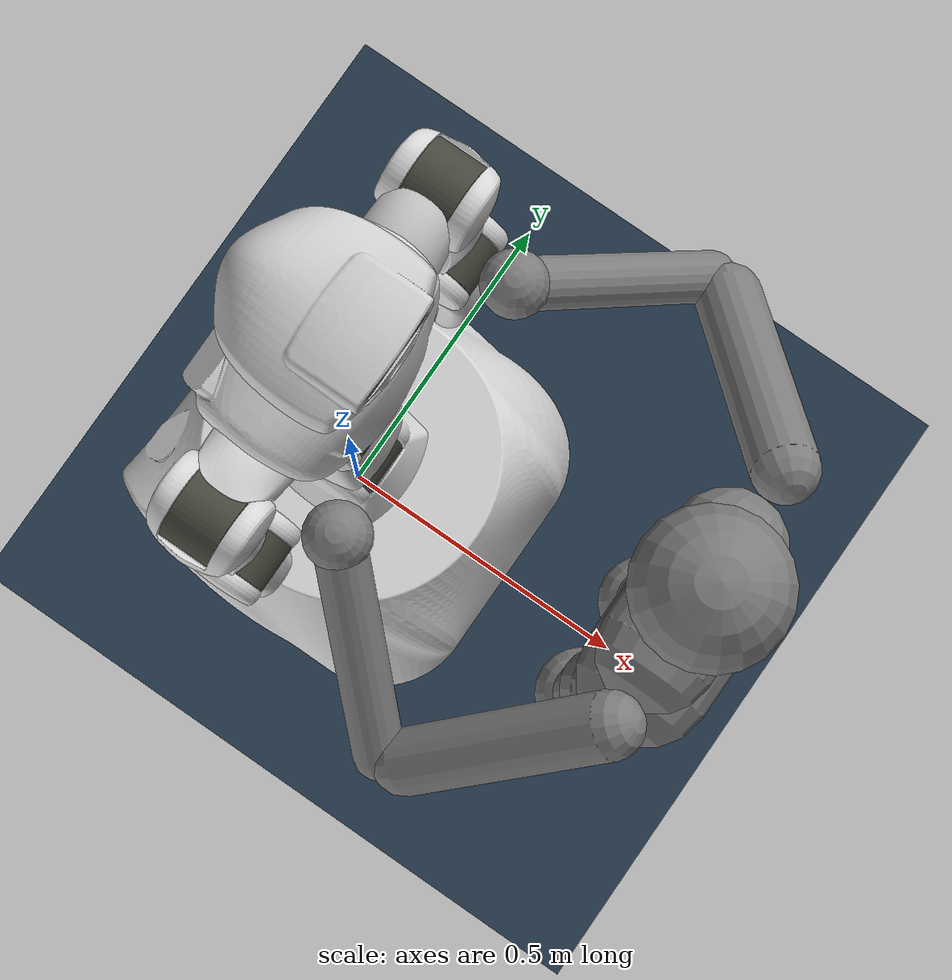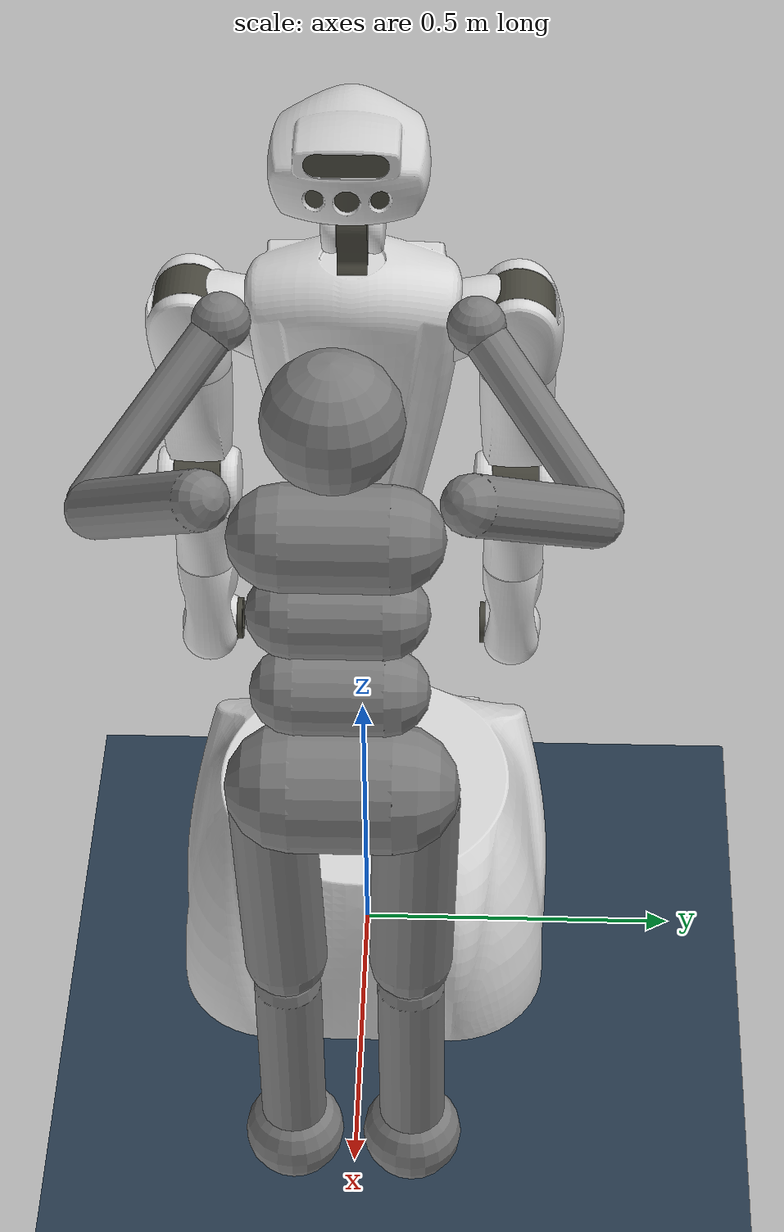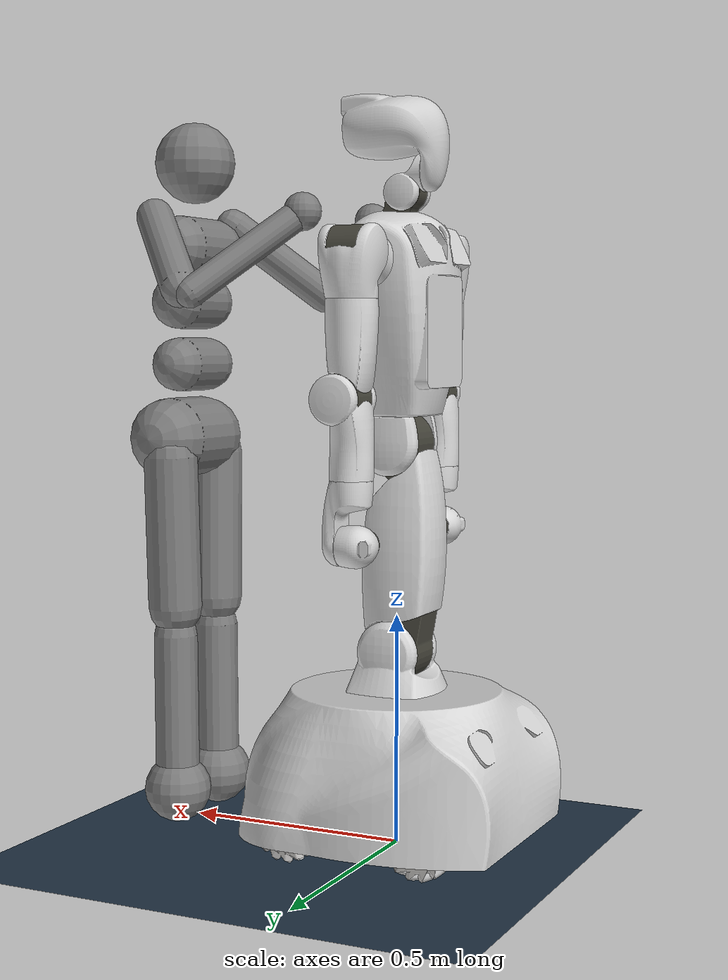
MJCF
<mujoco model="torobo2_standard">
  <compiler angle="radian" meshdir="torobo2/meshes" autolimits="true"/>
  <option timestep='0.001' integrator="implicitfast"/>
  <statistic meansize="0.169328" extent="2.00894" center="-0.00792332 4.8352e-07 0.725047"/>

  <default>
    <default class="torobo2">
      <joint armature="0.1" stiffness="0" damping="0"/>
      <default class="visual">
        <geom type="mesh" contype="0" conaffinity="0" group="2" density="0"/>
      </default>
      <default class="collision">
        <geom type="mesh" contype="1" conaffinity="1" group="3" rgba="1 1 1 1"/>
      </default>
    </default>

    <default class="humanoid">
      <geom contype="1" conaffinity="1"/>
      <default class="c_human_right-arm">
        <geom contype="1" conaffinity="1"/>
      </default>
      <default class="c_human_upper-body">
        <geom contype="1" conaffinity="1"/>
      </default>
      <default class="c_human_lower-body">
        <geom contype="1" conaffinity="1"/>
      </default>
      <default class="no-c_human">
        <geom contype="1" conaffinity="1"/>
      </default>
      <joint armature="1" damping="1" limited="true"/>
      <general dyntype="none" biastype="affine" ctrlrange="-.4 .4" ctrllimited="true"/>
      <material specular="0.5" rgba="0.4 0.33 0.26 1.0"/>
    </default>
  </default>

  <asset>
    <texture name="texplane" type="2d" builtin="checker" rgb1=".2 .3 .4" rgb2=".1 0.15 0.2"
          width="512" height="512" mark="cross" markrgb=".8 .8 .8"/>
    <material name="matplane" reflectance="0." texture="texplane" texrepeat="1 1" texuniform="true"/>

    <material name="219,219,219" specular="0.8588239999999999" shininess="1.0" rgba="0.858824 0.858824 0.858824 1.000000"/>
    <material name="210,210,210" specular="1.0" shininess="0.2" rgba="0.823529 0.823529 0.823529 1.000000"/>
    <material name="72,71,61" specular="0.26666666666666666" shininess="1.0" rgba="0.282353 0.278431 0.239216 1.000000"/>
    <material name="192,192,192" specular="1.0" shininess="0.2" rgba="0.752941 0.752941 0.752941 1.000000"/>
    <material name="190,188,186" specular="1.0" shininess="0.2" rgba="0.745098 0.737255 0.729412 1.000000"/>

    <!-- visual meshes -->
    <mesh name="base_link" file="visual/base_link.obj"/>
    <mesh name="right_wheel_link_0" file="visual/right_wheel_link_0.obj"/>
    <mesh name="right_wheel_link_1" file="visual/right_wheel_link_1.obj"/>
    <mesh name="left_wheel_link_0" file="visual/left_wheel_link_0.obj"/>
    <mesh name="left_wheel_link_1" file="visual/left_wheel_link_1.obj"/>
    <mesh name="torso_link0" file="visual/torso_link0.obj"/>
    <mesh name="torso_link1_0" file="visual/torso_link1_0.obj"/>
    <mesh name="torso_link1_1" file="visual/torso_link1_1.obj"/>
    <mesh name="torso_link2" file="visual/torso_link2.obj"/>
    <mesh name="torso_link3" file="visual/torso_link3.obj"/>
    <mesh name="head_link1" file="visual/head_link1.obj"/>
    <mesh name="head_link2" file="visual/head_link2.obj"/>
    <mesh name="head_link3_0" file="visual/head_link3_0.obj"/>
    <mesh name="head_link3_1" file="visual/head_link3_1.obj"/>
    <mesh name="left_arm_link0" file="visual/left_arm_link0.obj"/>
    <mesh name="left_arm_link1_0" file="visual/left_arm_link1_0.obj"/>
    <mesh name="left_arm_link1_1" file="visual/left_arm_link1_1.obj"/>
    <mesh name="left_arm_link2" file="visual/left_arm_link2.obj"/>
    <mesh name="left_arm_link3_0" file="visual/left_arm_link3_0.obj"/>
    <mesh name="left_arm_link3_1" file="visual/left_arm_link3_1.obj"/>
    <mesh name="left_arm_link4" file="visual/left_arm_link4.obj"/>
    <mesh name="left_arm_link5" file="visual/left_arm_link5.obj"/>
    <mesh name="left_arm_link6" file="visual/left_arm_link6.obj"/>
    <mesh name="left_arm_link7" file="visual/left_arm_link7.obj"/>
    <mesh name="right_arm_link0" file="visual/right_arm_link0.obj"/>
    <mesh name="right_arm_link1_0" file="visual/right_arm_link1_0.obj"/>
    <mesh name="right_arm_link1_1" file="visual/right_arm_link1_1.obj"/>
    <mesh name="right_arm_link2" file="visual/right_arm_link2.obj"/>
    <mesh name="right_arm_link3_0" file="visual/right_arm_link3_0.obj"/>
    <mesh name="right_arm_link3_1" file="visual/right_arm_link3_1.obj"/>
    <mesh name="right_arm_link4" file="visual/right_arm_link4.obj"/>
    <mesh name="right_arm_link5" file="visual/right_arm_link5.obj"/>
    <mesh name="right_arm_link6" file="visual/right_arm_link6.obj"/>
    <mesh name="right_arm_link7" file="visual/right_arm_link7.obj"/>

    <!-- collision meshes -->
    <mesh name="base_link_collision" file="collision/base_link.stl"/>
    <mesh name="torso_link0_collision" file="collision/torso_link0.stl"/>
    <mesh name="torso_link1_collision" file="collision/torso_link1.stl"/>
    <mesh name="torso_link2_collision" file="collision/torso_link2.stl"/>
    <mesh name="torso_link3_collision" file="collision/torso_link3.stl"/>
    <mesh name="head_link1_collision" file="collision/head_link1.stl"/>
    <mesh name="head_link2_collision" file="collision/head_link2.stl"/>
    <mesh name="head_link3_collision" file="collision/head_link3.stl"/>
    <mesh name="left_arm_link0_collision" file="collision/left_arm_link0.stl"/>
    <mesh name="left_arm_link1_collision" file="collision/left_arm_link1.stl"/>
    <mesh name="left_arm_link2_collision" file="collision/left_arm_link2.stl"/>
    <mesh name="left_arm_link3_collision" file="collision/left_arm_link3.stl"/>
    <mesh name="left_arm_link4_collision" file="collision/left_arm_link4.stl"/>
    <mesh name="left_arm_link5_collision" file="collision/left_arm_link5.stl"/>
    <mesh name="left_arm_link6_collision" file="collision/left_arm_link6.stl"/>
    <mesh name="left_arm_link7_collision" file="collision/left_arm_link7.stl"/>
    <mesh name="right_arm_link0_collision" file="collision/right_arm_link0.stl"/>
    <mesh name="right_arm_link1_collision" file="collision/right_arm_link1.stl"/>
    <mesh name="right_arm_link2_collision" file="collision/right_arm_link2.stl"/>
    <mesh name="right_arm_link3_collision" file="collision/right_arm_link3.stl"/>
    <mesh name="right_arm_link4_collision" file="collision/right_arm_link4.stl"/>
    <mesh name="right_arm_link5_collision" file="collision/right_arm_link5.stl"/>
    <mesh name="right_arm_link6_collision" file="collision/right_arm_link6.stl"/>
    <mesh name="right_arm_link7_collision" file="collision/right_arm_link7.stl"/>
  </asset>
  <worldbody>
    <light directional="true" diffuse=".4 .4 .4" specular="0.1 0.1 0.1" pos="0 0 5.0" dir="0 0 -1" castshadow="false"/>
    <light directional="true" diffuse=".6 .6 .6" specular="0.2 0.2 0.2" pos="0 0 4" dir="0 0 -1" castshadow="false"/>
    <geom name="ground" type="plane" size="0 0 1" pos="0.001 0 0" quat="1 0 0 0" material="matplane" condim="1" conaffinity='15'/>

    <body childclass="humanoid" name="humanoid_container" pos="0.5 0 -0.1" euler="0.0 0 3.14">
      <include file="torobo2/humanoid_bare.xml"/>
      <freejoint/>
    </body>

    <body name="base_link_trans_x" pos="0 0 0">
      <inertial pos="0 0 0" mass="0.00001" diaginertia="0.00001 0.00001 0.00001"/>
      <joint name="base_joint_trans_x" type="slide" axis="1 0 0" range="-10000 10000"/>
      <body name="base_link_trans_y" pos="0 0 0">
        <inertial pos="0 0 0" mass="0.00001" diaginertia="0.00001 0.00001 0.00001"/>
        <joint name="base_joint_trans_y" type="slide" axis="0 1 0" range="-10000 10000"/>
        <body name="base_link_rot_yaw" pos="0 0 0">
          <inertial pos="0 0 0" mass="0.00001" diaginertia="0.00001 0.00001 0.00001"/>
          <joint name="base_joint_rot_yaw" type="hinge" axis="0 0 1" range="-10000 10000"/>
          <body name="base_link" pos="0 0 0" childclass="torobo2">
            <inertial pos="-0.0231104 0.00158473 0.188355" quat="-0.0157449 0.686078 -0.018153 0.727131" mass="56.049" diaginertia="1.87057 1.70163 1.51139"/>
            <geom class="visual" type="mesh" mesh="base_link" material="219,219,219"/>
            <geom class="collision" type="capsule" size="0.25" fromto="0 -0.2 0.25 0.0 0.2 0.25"/>
            <geom class="visual" pos="0 0 0.34" type="mesh" mesh="torso_link0" material="219,219,219"/>
            <body name="torso/link_1" pos="0 0 0.425" quat="0.5 -0.5 -0.5 -0.5">
              <inertial pos="0.213191 -0.019853 -0.001309" quat="0.00960405 0.690592 -0.00415758 0.723169" mass="11.5246" diaginertia="0.313471 0.30707 0.0289366"/>
              <joint name="torso/joint_1" pos="0 0 0" axis="0 0 1" range="-0.959931 0.610865"/>
              <geom class="visual" type="mesh" mesh="torso_link1_0" material="72,71,61"/>
              <geom class="visual" type="mesh" mesh="torso_link1_1" material="219,219,219"/>
              <body name="torso/link_2" pos="0.45 0 0" quat="0.707107 0 0 0.707107">
                <inertial pos="1e-05 -0.039264 0.007875" quat="0.647558 0.762016 0.000151212 0.000100433" mass="2.8715" diaginertia="0.0121864 0.0119528 0.00777284"/>
                <joint name="torso/joint_2" pos="0 0 0" axis="0 0 1" range="-0.523599 2.18166"/>
                <geom class="visual" type="mesh" mesh="torso_link2" material="219,219,219"/>
                <geom class="collision" type="capsule" size="0.1" fromto="0 -0.0 0 0.0 0.5 0"/>
                <body name="torso/link_3" quat="0.707107 0.707107 0 0">
                  <inertial pos="-0.0127522 0.00183622 0.30238" quat="0.999869 0.00116029 0.0160629 0.00154784" mass="10.0047" diaginertia="0.166033 0.150799 0.0601367"/>
                  <joint name="torso/joint_3" pos="0 0 0" axis="0 0 1" range="-2.0944 2.0944"/>
                  <geom class="visual" type="mesh" mesh="torso_link3" material="219,219,219"/>
                  <geom class="collision" type="capsule" size="0.15" fromto="0 0 0.15 0. 0. 0.35"/>
                  <geom class="visual" pos="0 0.03465 0.3416" quat="0.5 0.5 0.5 -0.5" type="mesh" mesh="left_arm_link0" material="219,219,219"/>
                  <geom class="visual" pos="0 -0.03465 0.3416" quat="0.5 0.5 0.5 -0.5" type="mesh" mesh="right_arm_link0" material="219,219,219"/>
                  <body name="left_arm/link_1" pos="0 0.22035 0.418519" quat="0.392847 0.587938 0.587938 -0.392847">
                    <inertial pos="0.007282 -0.002236 0.061573" quat="0.706031 -0.0605284 -0.0482315 0.703939" mass="2.34532" diaginertia="0.00996609 0.00950611 0.0029046"/>
                    <joint name="left_arm/joint_1" pos="0 0 0" axis="0 0 1" range="-1.22173 4.18879" ref="-0.5"/>
                    <geom class="visual" type="mesh" mesh="left_arm_link1_0" material="72,71,61"/>
                    <geom class="visual" type="mesh" mesh="left_arm_link1_1" material="219,219,219"/>
                    <geom class="collision" type="capsule" size="0.06" fromto="0 0 -0.01 0 0 0.03"/>
                    <body name="left_arm/link_2" pos="0.02 0 0" quat="0.587938 0.587938 0.392847 -0.392847">
                      <inertial pos="0.001632 0.064705 0.003689" quat="0.740303 0.672149 -0.00176482 0.0127677" mass="1.92983" diaginertia="0.0070432 0.00669025 0.00256541"/>
                      <joint name="left_arm/joint_2" pos="0 0 0" axis="0 0 1" range="-1.91986 0" ref="0.2"/>
                      <geom class="visual" type="mesh" mesh="left_arm_link2" material="219,219,219"/>
                      <geom class="collision" type="capsule" size="0.06" fromto="0 0 0 0.0 0.3 0"/>
                      <body name="left_arm/link_3" pos="0 0.3 0" quat="0.5 0.5 0.5 -0.5">
                        <inertial pos="0.006987 -0.002219 0.07002" quat="0.998294 -0.0116747 -0.0549101 0.0160829" mass="2.41136" diaginertia="0.0121108 0.0120041 0.00296219"/>
                        <joint name="left_arm/joint_3" pos="0 0 0" axis="0 0 1" range="-2.0944 2.0944" />
                        <geom class="visual" type="mesh" mesh="left_arm_link3_0" material="72,71,61"/>
                        <geom class="visual" type="mesh" mesh="left_arm_link3_1" material="219,219,219"/>
                        <geom class="collision" type="capsule" size="0.06" fromto="0 0 0 0 0 -0.3"/>
                        <body name="left_arm/link_4" pos="0.02 0 0" quat="0.707107 0.707107 0 0">
                          <inertial pos="-0.011045 -0.047406 0.003626" quat="0.673288 0.732855 -0.0679342 -0.0706561" mass="1.16816" diaginertia="0.0040733 0.00384647 0.001413"/>
                          <joint name="left_arm/joint_4" pos="0 0 0" axis="0 0 1" range="-0.0872665 2.35619" ref="-0.9"/>
                          <geom class="visual" type="mesh" mesh="left_arm_link4" material="219,219,219"/>
                          <geom class="collision" type="capsule" size="0.06" fromto="0 0 -0.02 0 0 0.02"/>
                          <body name="left_arm/link_5" pos="-0.02 -0.3 0" quat="0.5 -0.5 -0.5 -0.5">
                            <inertial pos="-3e-06 0.011867 0.099758" quat="0.990044 0.140741 -0.00033647 -0.00199369" mass="1.13531" diaginertia="0.00300474 0.00292652 0.000794792"/>
                            <joint name="left_arm/joint_5" pos="0 0 0" axis="0 0 1" range="-1.5708 1.5708"/>
                            <geom class="visual" type="mesh" mesh="left_arm_link5" material="219,219,219"/>
                            <body name="left_arm/link_6" quat="0.5 0.5 0.5 -0.5">
                              <inertial pos="1.5e-05 0.002262 -0.003468" quat="0.997384 -0.0720286 0.000853523 0.00598791" mass="0.737707" diaginertia="0.000683267 0.000624344 0.000429623"/>
                              <joint name="left_arm/joint_6" pos="0 0 0" axis="0 0 1" range="-1.5708 1.5708"/>
                              <geom class="visual" type="mesh" mesh="left_arm_link6" material="219,219,219"/>
                              <body name="left_arm/link_7" pos="0 0.048 0.01" quat="0.707107 0.707107 0 0">
                                <inertial pos="0.00017 2.7e-05 0.01376" quat="0.52141 0.478267 -0.520329 0.478174" mass="0.14265" diaginertia="7.31843e-05 5.09235e-05 4.92308e-05"/>
                                <joint name="left_arm/joint_7" pos="0 0 0" axis="0 0 1" range="-0.349066 1.5708"/>
                                <geom class="visual" type="mesh" mesh="left_arm_link7" material="72,71,61"/>
                              </body>
                            </body>
                          </body>
                        </body>
                      </body>
                    </body>
                  </body>
                  <body name="right_arm/link_1" pos="0 -0.22035 0.418519" quat="0.587938 0.392847 0.392847 -0.587938">
                    <inertial pos="0.007282 0.002236 -0.061573" quat="0.703939 0.0482315 0.0605284 0.706031" mass="2.34532" diaginertia="0.00996609 0.00950611 0.0029046"/>
                    <joint name="right_arm/joint_1" pos="0 0 0" axis="0 0 1" range="-1.22173 4.18879" ref="-0.5"/>
                    <geom class="visual" type="mesh" mesh="right_arm_link1_0" material="72,71,61"/>
                    <geom class="visual" type="mesh" mesh="right_arm_link1_1" material="219,219,219"/>
                    <geom class="collision" type="capsule" size="0.06" fromto="0 0 -0.04 0 0 0.01"/>

                    <body name="right_arm/link_2" pos="0.02 0 0" quat="0.587938 -0.587938 -0.392847 -0.392847">
                      <inertial pos="0.001632 0.064705 0.003689" quat="0.740303 0.672149 -0.00176482 0.0127677" mass="1.92983" diaginertia="0.0070432 0.00669025 0.00256541"/>
                      <joint name="right_arm/joint_2" pos="0 0 0" axis="0 0 1" range="-1.91986 0" ref="0.2"/>
                      <geom class="visual" type="mesh" mesh="right_arm_link2"  material="219,219,219"/>
                      <geom class="collision" type="capsule" size="0.06" fromto="0 0 0 0. 0.3 0"/>
                      <body name="right_arm/link_3" pos="0 0.3 0" quat="0.5 -0.5 -0.5 -0.5">
                        <inertial pos="0.006987 0.002219 -0.07002" quat="0.998294 -0.0116747 0.0549101 -0.0160829" mass="2.41136" diaginertia="0.0121108 0.0120041 0.00296219"/>
                        <joint name="right_arm/joint_3" pos="0 0 0" axis="0 0 1" range="-2.0944 2.0944"/>
                        <geom class="visual" type="mesh" mesh="right_arm_link3_0"  material="72,71,61"/>
                        <geom class="visual" type="mesh" mesh="right_arm_link3_1"  material="219,219,219"/>
                        <geom class="collision" type="capsule" size="0.06" fromto="0 0 0 0 0 0.3"/>
                        <body name="right_arm/link_4" pos="0.02 0 0" quat="0.707107 -0.707107 0 0">
                          <inertial pos="-0.011045 -0.047406 0.003626" quat="0.673288 0.732855 -0.0679342 -0.0706561" mass="1.16816" diaginertia="0.0040733 0.00384647 0.001413"/>
                          <joint name="right_arm/joint_4" pos="0 0 0" axis="0 0 1" range="-0.0872665 2.35619" ref="-0.9"/>
                          <geom class="visual" type="mesh" mesh="right_arm_link4"  material="219,219,219"/>
                          <geom class="collision" type="capsule" size="0.06" fromto="0 0 -0.02 0 0 0.02"/>
                          <body name="right_arm/link_5" pos="-0.02 -0.3 0" quat="0.5 0.5 0.5 -0.5">
                            <inertial pos="3e-06 0.011867 -0.099758" quat="0.990044 -0.140741 -0.00033647 0.00199369" mass="1.13531" diaginertia="0.00300474 0.00292652 0.000794792"/>
                            <joint name="right_arm/joint_5" pos="0 0 0" axis="0 0 1" range="-1.5708 1.5708"/>
                            <geom class="visual" type="mesh" mesh="right_arm_link5"  material="219,219,219"/>
                            <body name="right_arm/link_6" quat="0.5 -0.5 -0.5 -0.5">
                              <inertial pos="1.5e-05 -0.002262 0.003468" quat="0.997384 -0.0720286 -0.000853523 -0.00598791" mass="0.737707" diaginertia="0.000683267 0.000624344 0.000429623"/>
                              <joint name="right_arm/joint_6" pos="0 0 0" axis="0 0 1" range="-1.5708 1.5708"/>
                              <geom class="visual" type="mesh" mesh="right_arm_link6"  material="219,219,219"/>
                              <body name="right_arm/link_7" pos="0 0.048 -0.01" quat="0.707107 -0.707107 0 0">
                                <inertial pos="0.00017 -2.7e-05 -0.01376" quat="0.478174 0.520329 -0.478267 0.52141" mass="0.14265" diaginertia="7.31843e-05 5.09235e-05 4.92308e-05"/>
                                <joint name="right_arm/joint_7" pos="0 0 0" axis="0 0 1" range="-0.349066 1.5708"/>
                                <geom class="visual" type="mesh" mesh="right_arm_link7"  material="72,71,61"/>
                              </body>
                            </body>
                          </body>
                        </body>
                      </body>
                    </body>
                  </body>
                  <body name="head/link_1" pos="0 0 0.53">
                    <inertial pos="-0.012467 -0.004271 -0.021697" quat="0.683565 -0.0689821 -0.121402 0.716409" mass="0.581793" diaginertia="0.00103142 0.000928712 0.000277733"/>
                    <joint name="head/joint_1" pos="0 0 0" axis="0 0 1" range="-2.96706 2.96706"/>
                    <geom class="visual" type="mesh" mesh="head_link1" material="72,71,61"/>
                    <body name="head/link_2" pos="-0.02 0 0" quat="0.5 -0.5 -0.5 -0.5">
                      <inertial pos="0.028956 -0.032951 0.000172" quat="0.661731 0.647513 0.279151 0.25478" mass="0.321723" diaginertia="0.000479673 0.000405915 0.000249251"/>
                      <joint name="head/joint_2" pos="0 0 0" axis="0 0 1" range="-0.872665 1.0472"/>
                      <geom class="visual" type="mesh" mesh="head_link2" material="219,219,219"/>
                      <body name="head/link_3" pos="0.041 0 0" quat="0.707107 -0.707107 0 0">
                        <inertial pos="0.097293 0.000224 0.034755" quat="0.981108 0.000352451 0.193328 -0.00720088" mass="1.38491" diaginertia="0.00840426 0.00768934 0.00440097"/>
                        <joint name="head/joint_3" pos="0 0 0" axis="0 0 1" range="-0.872665 0.872665"/>
                        <geom class="visual" type="mesh" mesh="head_link3_0" material="72,71,61" />
                        <geom class="visual" type="mesh" mesh="head_link3_1" material="210,210,210" />
                        <geom class="collision" type="capsule" size="0.12" fromto="0.05 -0.1 0 0.05 0.1 0"/>
                      </body>
                    </body>
                  </body>
                </body>
              </body>
            </body>
          </body>
          <!-- wheel collision is disabled -->
          <body name="base_front_right_wheel/link" pos="0.15 -0.221475 0.07582" quat="0.707107 -0.707107 0 0">
            <inertial pos="0 0 -0.000427" quat="0.5 0.5 -0.5 0.5" mass="1.05512" diaginertia="0.00362702 0.00213355 0.00213355"/>
            <joint name="base_front_right_wheel/joint" pos="0 0 0" axis="0 0 1"/>
            <geom class="visual" type="mesh" mesh="right_wheel_link_0" material="190,188,186"/>
            <geom class="visual" type="mesh" mesh="right_wheel_link_1" material="192,192,192"/>
          </body>
          <body name="base_front_left_wheel/link" pos="0.15 0.221475 0.07582" quat="0.707107 -0.707107 0 0">
            <inertial pos="0 0 0" quat="0.5 0.5 -0.5 0.5" mass="1.05512" diaginertia="0.00362702 0.00213355 0.00213355"/>
            <joint name="base_front_left_wheel/joint" pos="0 0 0" axis="0 0 1"/>
            <geom class="visual" type="mesh" mesh="left_wheel_link_0" material="190,188,186"/>
            <geom class="visual" type="mesh" mesh="left_wheel_link_1" material="192,192,192"/>
          </body>
          <body name="base_rear_right_wheel/link" pos="-0.15 -0.221475 0.07582" quat="0.707107 -0.707107 0 0">
            <inertial pos="0 0 0" quat="0.5 0.5 -0.5 0.5" mass="1.05512" diaginertia="0.00362702 0.00213355 0.00213355"/>
            <joint name="base_rear_right_wheel/joint" pos="0 0 0" axis="0 0 1"/>
            <geom class="visual" type="mesh" mesh="left_wheel_link_0" material="190,188,186"/>
            <geom class="visual" type="mesh" mesh="left_wheel_link_1" material="192,192,192"/>
          </body>
          <body name="base_rear_left_wheel/link" pos="-0.15 0.221475 0.07582" quat="0.707107 -0.707107 0 0">
            <inertial pos="0 0 -0.000427" quat="0.5 0.5 -0.5 0.5" mass="1.05512" diaginertia="0.00362702 0.00213355 0.00213355"/>
            <joint name="base_rear_left_wheel/joint" pos="0 0 0" axis="0 0 1"/>
            <geom class="visual" type="mesh" mesh="right_wheel_link_0" material="190,188,186"/>
            <geom class="visual" type="mesh" mesh="right_wheel_link_1" material="192,192,192"/>
          </body>
        </body>
      </body>
    </body>
  </worldbody>
  <contact>
    <exclude body1="base_link" body2="head/link_1"/>
    <exclude body1="base_link" body2="head/link_2"/>
    <exclude body1="base_link" body2="head/link_3"/>
    <exclude body1="base_link" body2="torso/link_1"/>
    <exclude body1="base_link" body2="torso/link_2"/>
    <exclude body1="base_link" body2="torso/link_3"/>
    <exclude body1="head/link_1" body2="head/link_2"/>
    <exclude body1="head/link_1" body2="head/link_3"/>
    <exclude body1="head/link_1" body2="left_arm/link_1"/>
    <exclude body1="head/link_1" body2="left_arm/link_2"/>
    <exclude body1="head/link_1" body2="right_arm/link_1"/>
    <exclude body1="head/link_1" body2="right_arm/link_2"/>
    <exclude body1="head/link_1" body2="torso/link_1"/>
    <exclude body1="head/link_1" body2="torso/link_2"/>
    <exclude body1="head/link_1" body2="torso/link_3"/>
    <exclude body1="head/link_2" body2="head/link_3"/>
    <exclude body1="head/link_2" body2="left_arm/link_1"/>
    <exclude body1="head/link_2" body2="left_arm/link_2"/>
    <exclude body1="head/link_2" body2="right_arm/link_1"/>
    <exclude body1="head/link_2" body2="right_arm/link_2"/>
    <exclude body1="head/link_2" body2="torso/link_1"/>
    <exclude body1="head/link_2" body2="torso/link_2"/>
    <exclude body1="head/link_2" body2="torso/link_3"/>
    <exclude body1="head/link_3" body2="left_arm/link_1"/>
    <exclude body1="head/link_3" body2="right_arm/link_1"/>
    <exclude body1="head/link_3" body2="torso/link_1"/>
    <exclude body1="head/link_3" body2="torso/link_2"/>
    <exclude body1="left_arm/link_1" body2="left_arm/link_2"/>
    <exclude body1="left_arm/link_1" body2="left_arm/link_3"/>
    <exclude body1="left_arm/link_1" body2="left_arm/link_4"/>
    <exclude body1="left_arm/link_1" body2="left_arm/link_5"/>
    <exclude body1="left_arm/link_1" body2="left_arm/link_6"/>
    <exclude body1="left_arm/link_1" body2="left_arm/link_7"/>
    <exclude body1="left_arm/link_1" body2="right_arm/link_1"/>
    <exclude body1="left_arm/link_1" body2="right_arm/link_2"/>
    <exclude body1="left_arm/link_1" body2="right_arm/link_3"/>
    <exclude body1="left_arm/link_1" body2="right_arm/link_4"/>
    <exclude body1="left_arm/link_1" body2="torso/link_1"/>
    <exclude body1="left_arm/link_1" body2="torso/link_2"/>
    <exclude body1="left_arm/link_1" body2="torso/link_3"/>
    <exclude body1="left_arm/link_2" body2="left_arm/link_3"/>
    <exclude body1="left_arm/link_2" body2="left_arm/link_4"/>
    <exclude body1="left_arm/link_2" body2="left_arm/link_5"/>
    <exclude body1="left_arm/link_2" body2="left_arm/link_6"/>
    <exclude body1="left_arm/link_2" body2="left_arm/link_7"/>
    <exclude body1="left_arm/link_2" body2="right_arm/link_1"/>
    <exclude body1="left_arm/link_2" body2="right_arm/link_2"/>
    <exclude body1="left_arm/link_2" body2="right_arm/link_3"/>
    <exclude body1="left_arm/link_2" body2="torso/link_1"/>
    <exclude body1="left_arm/link_2" body2="torso/link_2"/>
    <exclude body1="left_arm/link_3" body2="left_arm/link_4"/>
    <exclude body1="left_arm/link_3" body2="left_arm/link_5"/>
    <exclude body1="left_arm/link_3" body2="left_arm/link_6"/>
    <exclude body1="left_arm/link_3" body2="left_arm/link_7"/>
    <exclude body1="left_arm/link_3" body2="right_arm/link_1"/>
    <exclude body1="left_arm/link_3" body2="right_arm/link_2"/>
    <exclude body1="left_arm/link_4" body2="left_arm/link_5"/>
    <exclude body1="left_arm/link_4" body2="left_arm/link_6"/>
    <exclude body1="left_arm/link_4" body2="left_arm/link_7"/>
    <exclude body1="left_arm/link_4" body2="right_arm/link_1"/>
    <exclude body1="left_arm/link_5" body2="left_arm/link_6"/>
    <exclude body1="left_arm/link_5" body2="left_arm/link_7"/>
    <exclude body1="left_arm/link_6" body2="left_arm/link_7"/>
    <exclude body1="right_arm/link_1" body2="right_arm/link_2"/>
    <exclude body1="right_arm/link_1" body2="right_arm/link_3"/>
    <exclude body1="right_arm/link_1" body2="right_arm/link_4"/>
    <exclude body1="right_arm/link_1" body2="right_arm/link_5"/>
    <exclude body1="right_arm/link_1" body2="right_arm/link_6"/>
    <exclude body1="right_arm/link_1" body2="right_arm/link_7"/>
    <exclude body1="right_arm/link_1" body2="torso/link_1"/>
    <exclude body1="right_arm/link_1" body2="torso/link_2"/>
    <exclude body1="right_arm/link_1" body2="torso/link_3"/>
    <exclude body1="right_arm/link_2" body2="right_arm/link_3"/>
    <exclude body1="right_arm/link_2" body2="right_arm/link_4"/>
    <exclude body1="right_arm/link_2" body2="right_arm/link_5"/>
    <exclude body1="right_arm/link_2" body2="right_arm/link_6"/>
    <exclude body1="right_arm/link_2" body2="right_arm/link_7"/>
    <exclude body1="right_arm/link_2" body2="torso/link_1"/>
    <exclude body1="right_arm/link_2" body2="torso/link_2"/>
    <exclude body1="right_arm/link_3" body2="right_arm/link_4"/>
    <exclude body1="right_arm/link_3" body2="right_arm/link_5"/>
    <exclude body1="right_arm/link_3" body2="right_arm/link_6"/>
    <exclude body1="right_arm/link_3" body2="right_arm/link_7"/>
    <exclude body1="right_arm/link_4" body2="right_arm/link_5"/>
    <exclude body1="right_arm/link_4" body2="right_arm/link_6"/>
    <exclude body1="right_arm/link_4" body2="right_arm/link_7"/>
    <exclude body1="right_arm/link_5" body2="right_arm/link_6"/>
    <exclude body1="right_arm/link_5" body2="right_arm/link_7"/>
    <exclude body1="right_arm/link_6" body2="right_arm/link_7"/>
    <exclude body1="torso/link_1" body2="torso/link_2"/>
    <exclude body1="torso/link_1" body2="torso/link_3"/>
    <exclude body1="torso/link_2" body2="torso/link_3"/>
    <exclude body1="base_link" body2="left_arm/link_1"/>
    <exclude body1="head/link_3" body2="left_arm/link_2"/>
    <exclude body1="base_link" body2="right_arm/link_1"/>
    <exclude body1="head/link_3" body2="right_arm/link_2"/>
  </contact>
  <actuator>
    <velocity name="robot/base_joint_trans_x" joint="base_joint_trans_x" ctrlrange="-10 10" kv="10000"/>
    <velocity name="robot/base_joint_trans_y" joint="base_joint_trans_y" ctrlrange="-10 10" kv="10000"/>
    <velocity name="robot/base_joint_rot_yaw" joint="base_joint_rot_yaw" ctrlrange="-10 10" kv="10000"/>
    <position name="robot/torso/joint_1" joint="torso/joint_1" ctrlrange="-0.959931 0.610865" forcerange="-400 400" kp="10000" kv="1000"/>
    <position name="robot/torso/joint_2" joint="torso/joint_2" ctrlrange="-0.523599 2.18166" forcerange="-250 250" kp="10000" kv="1000"/>
    <position name="robot/torso/joint_3" joint="torso/joint_3" ctrlrange="-2.0944 2.0944" forcerange="-300 300" kp="10000" kv="1000"/>
    <position name="robot/left_arm/joint_1" joint="left_arm/joint_1" ctrlrange="-1.22173 4.18879" forcerange="-135 135" kp="10000" kv="1000"/>
    <position name="robot/left_arm/joint_2" joint="left_arm/joint_2" ctrlrange="-1.91986 0" forcerange="-75 75" kp="10000" kv="1000"/>
    <position name="robot/left_arm/joint_3" joint="left_arm/joint_3" ctrlrange="-2.0944 2.0944" forcerange="-75 75" kp="10000" kv="1000"/>
    <position name="robot/left_arm/joint_4" joint="left_arm/joint_4" ctrlrange="-0.0872665 2.35619" forcerange="-75 75" kp="10000" kv="1000"/>
    <position name="robot/left_arm/joint_5" joint="left_arm/joint_5" ctrlrange="-1.5708 1.5708" forcerange="-30 30" kp="10000" kv="1000"/>
    <position name="robot/left_arm/joint_6" joint="left_arm/joint_6" ctrlrange="-1.5708 1.5708" forcerange="-30 30" kp="10000" kv="1000"/>
    <position name="robot/left_arm/joint_7" joint="left_arm/joint_7" ctrlrange="-0.349066 1.5708" forcerange="-30 30" kp="10000" kv="1000"/>
    <position name="robot/right_arm/joint_1" joint="right_arm/joint_1" ctrlrange="-1.22173 4.18879" forcerange="-135 135" kp="10000" kv="1000"/>
    <position name="robot/right_arm/joint_2" joint="right_arm/joint_2" ctrlrange="-1.91986 0" forcerange="-75 75" kp="10000" kv="1000"/>
    <position name="robot/right_arm/joint_3" joint="right_arm/joint_3" ctrlrange="-2.0944 2.0944" forcerange="-75 75" kp="10000" kv="1000"/>
    <position name="robot/right_arm/joint_4" joint="right_arm/joint_4" ctrlrange="-0.0872665 2.35619" forcerange="-75 75" kp="10000" kv="1000"/>
    <position name="robot/right_arm/joint_5" joint="right_arm/joint_5" ctrlrange="-1.5708 1.5708" forcerange="-30 30" kp="10000" kv="1000"/>
    <position name="robot/right_arm/joint_6" joint="right_arm/joint_6" ctrlrange="-1.5708 1.5708" forcerange="-30 30" kp="10000" kv="1000"/>
    <position name="robot/right_arm/joint_7" joint="right_arm/joint_7" ctrlrange="-0.349066 1.5708" forcerange="-30 30" kp="10000" kv="1000"/>
    <position name="robot/head/joint_1" joint="head/joint_1" ctrlrange="-2.96706 2.96706" forcerange="-6 6" kp="100" kv="10"/>
    <position name="robot/head/joint_2" joint="head/joint_2" ctrlrange="-0.872665 1.0472" forcerange="-6 6" kp="100" kv="10"/>
    <position name="robot/head/joint_3" joint="head/joint_3" ctrlrange="-0.872665 0.872665" forcerange="-6 6" kp="100" kv="10"/>
    <!-- human -->
    <general class="humanoid" gear="100" joint="abdomen_y" name="abdomen_y" biasprm="0 -0.004 0"/>
    <general class="humanoid" gear="100" joint="abdomen_z" name="abdomen_z" biasprm="0 -0.004 0" />
    <general class="humanoid" gear="100" joint="abdomen_x" name="abdomen_x" biasprm="0 -0.004 0" />
    <general class="humanoid" gear="100" joint="right_hip_x" name="right_hip_x" biasprm="0 -0.004 0" />
    <general class="humanoid" gear="100" joint="right_hip_z" name="right_hip_z" biasprm="0 -0.004 0" />
    <general class="humanoid" gear="300" joint="right_hip_y" name="right_hip_y" biasprm="0 -0.0005 0" />
    <general class="humanoid" gear="200" joint="right_knee" name="right_knee" biasprm="0 -0.000 0" />
    <general class="humanoid" gear="100" joint="left_hip_x" name="left_hip_x" biasprm="0 -0.004 0" />
    <general class="humanoid" gear="100" joint="left_hip_z" name="left_hip_z" biasprm="0 -0.004 0" />
    <general class="humanoid" gear="300" joint="left_hip_y" name="left_hip_y" biasprm="0 -0.0005 0" />
    <general class="humanoid" gear="200" joint="left_knee" name="left_knee" biasprm="0 -0.000 0" />
    <general class="humanoid" gear="25" joint="right_shoulder1" name="right_shoulder1" biasprm="0 -0.001 0"/>
    <general class="humanoid" gear="25" joint="right_shoulder2" name="right_shoulder2" biasprm="0 -0.001 0"/>
    <general class="humanoid" gear="25" joint="right_elbow" name="right_elbow" biasprm="0 -0.001 0" />
    <general class="humanoid" gear="25" joint="left_shoulder1" name="left_shoulder1" biasprm="0 -0.001 0"/>
    <general class="humanoid" gear="25" joint="left_shoulder2" name="left_shoulder2" biasprm="0 -0.001 0"/>
    <general class="humanoid" gear="25" joint="left_elbow" name="left_elbow" biasprm="0 -0.001 0"/>
  </actuator>
</mujoco>

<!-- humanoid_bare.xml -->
<mujoco model="humanoid">
  <body childclass="no-c_human" name="torso" pos="0 0 1.4">
    <geom class="c_human_upper-body" fromto="0 -.07 0 0 .07 0" name="torso1" size="0.07" type="capsule"/>
    <geom class="c_human_upper-body" name="head" pos="0 0 .19" size=".09" type="sphere" user="258"/>
    <geom class="c_human_upper-body" fromto="-.01 -.06 -.12 -.01 .06 -.12" name="uwaist" size="0.06" type="capsule"/>
    <body name="lwaist" pos="-.01 0 -0.260" quat="1.000 0 -0.002 0">
      <geom class="c_human_upper-body" fromto="0 -.06 0 0 .06 0" name="lwaist" size="0.06" type="capsule"/>
      <joint armature="0.02" axis="0 0 1" damping="5" name="abdomen_z" pos="0 0 0.065" range="-0.785397 0.785397" stiffness="20" type="hinge"/>
      <joint armature="0.02" axis="0 1 0" damping="5" name="abdomen_y" pos="0 0 0.065" range="-1.308996 0.523598" stiffness="10" type="hinge" ref="1"/>
      <body name="pelvis" pos="0 0 -0.165" quat="1.000 0 -0.002 0" childclass="c_human_lower-body">
        <joint armature="0.02" axis="1 0 0" damping="5" name="abdomen_x" pos="0 0 0.1" range="-0.610865 0.610865" stiffness="10" type="hinge"/>
        <geom fromto="-.02 -.07 0 -.02 .07 0" name="butt" size="0.09" type="capsule"/>
        <body name="right_thigh" pos="0 -0.1 -0.04">
          <joint armature="0.01" axis="1 0 0" damping="5" name="right_hip_x" pos="0 0 0" range="-0.436332 0.087266" stiffness="10" type="hinge"/>
          <joint armature="0.01" axis="0 0 1" damping="5" name="right_hip_z" pos="0 0 0" range="-1.047197 0.610865" stiffness="10" type="hinge"/>
          <joint armature="0.0080" axis="0 1 0" damping="5" name="right_hip_y" pos="0 0 0" range="-1.919861 0.349066" stiffness="20" type="hinge"/>
          <geom fromto="0 0 0 0 0.01 -.34" name="right_thigh1" size="0.06" type="capsule"/>
          <body name="right_shin" pos="0 0.01 -0.403">
            <joint armature="0.0060" axis="0 -1 0" name="right_knee" pos="0 0 .02" range="-2.792524 -0.034907" type="hinge"/>
            <geom fromto="0 0 0 0 0 -.3" name="right_shin1" size="0.049" type="capsule"/>
            <body name="right_foot" pos="0 0 -0.45">
              <geom name="right_foot" pos="0 0 0.1" size="0.075" type="sphere" user="0"/>
            </body>
          </body>
        </body>
        <body name="left_thigh" pos="0 0.1 -0.04">
          <joint armature="0.01" axis="-1 0 0" damping="5" name="left_hip_x" pos="0 0 0" range="-0.436332 0.087266" stiffness="10" type="hinge"/>
          <joint armature="0.01" axis="0 0 -1" damping="5" name="left_hip_z" pos="0 0 0" range="-1.047197 0.610865" stiffness="10" type="hinge"/>
          <joint armature="0.01" axis="0 1 0" damping="5" name="left_hip_y" pos="0 0 0" range="-1.919861 0.349066" stiffness="20" type="hinge"/>
          <geom fromto="0 0 0 0 -0.01 -.34" name="left_thigh1" size="0.06" type="capsule"/>
          <body name="left_shin" pos="0 -0.01 -0.403">
            <joint armature="0.0060" axis="0 -1 0" name="left_knee" pos="0 0 .02" range="-2.792524 -0.034907" stiffness="1" type="hinge"/>
            <geom fromto="0 0 0 0 0 -.3" name="left_shin1" size="0.049" type="capsule"/>
            <body name="left_foot" pos="0 0 -0.45">
              <geom name="left_foot" type="sphere" size="0.075" pos="0 0 0.1" user="0" />
            </body>
          </body>
        </body>
      </body>
    </body>
    <body childclass="c_human_right-arm" name="right_upper_arm" pos="0 -0.17 0.06">
      <joint armature="0.0068" axis="2 1 1" name="right_shoulder1" pos="0 0 0" range="-1.483529 1.047197" stiffness="1" type="hinge"/>
      <joint armature="0.0051" axis="0 -1 1" name="right_shoulder2" pos="0 0 0" range="-1.483529 1.047197" stiffness="1" type="hinge"/>
      <geom fromto="0 0 0 .16 -.16 -.16" name="right_uarm1" size="0.04 0.16" type="capsule"/>
      <geom class="no-c_human" name="target-u" pos="0.081 -0.08 -0.08" size="0.01" rgba="1 0 0 1"/>
      <body name="right_lower_arm" pos=".18 -.18 -.18">
        <joint armature="0.0028" axis="0 -1 1" name="right_elbow" pos="0 0 0" range="-1.570795 0.872664" stiffness="0" type="hinge"/>
        <geom fromto="0.01 0.01 0.01 .17 .17 .17" name="right_larm" size="0.031" type="capsule"/>
        <geom class="no-c_human" name="target-l" pos="0.091 0.09 0.09" size="0.01" rgba="1 0 0 1"/>
        <geom name="right_hand" pos=".18 .18 .18" size="0.04" type="sphere"/>
        <camera pos="0 0 0"/>
      </body>
    </body>
    <body childclass="c_human_upper-body" name="left_upper_arm" pos="0 0.17 0.06">
      <joint armature="0.0068" axis="2 -1 1" name="left_shoulder1" pos="0 0 0" range="-1.047197 1.483529" stiffness="1" type="hinge"/>
      <joint armature="0.0051" axis="0 1 1" name="left_shoulder2" pos="0 0 0" range="-1.047197 1.483529" stiffness="1" type="hinge"/>
      <geom fromto="0 0 0 .16 .16 -.16" name="left_uarm1" size="0.04 0.16" type="capsule"/>
      <body name="left_lower_arm" pos=".18 .18 -.18">
        <joint armature="0.0028" axis="0 -1 -1" name="left_elbow" pos="0 0 0" range="-1.570795 0.872664" stiffness="0" type="hinge"/>
        <geom fromto="0.01 -0.01 0.01 .17 -.17 .17" name="left_larm" size="0.031" type="capsule"/>
        <geom name="left_hand" pos=".18 -.18 .18" size="0.04" type="sphere"/>
      </body>
    </body>
  </body>
</mujoco>
